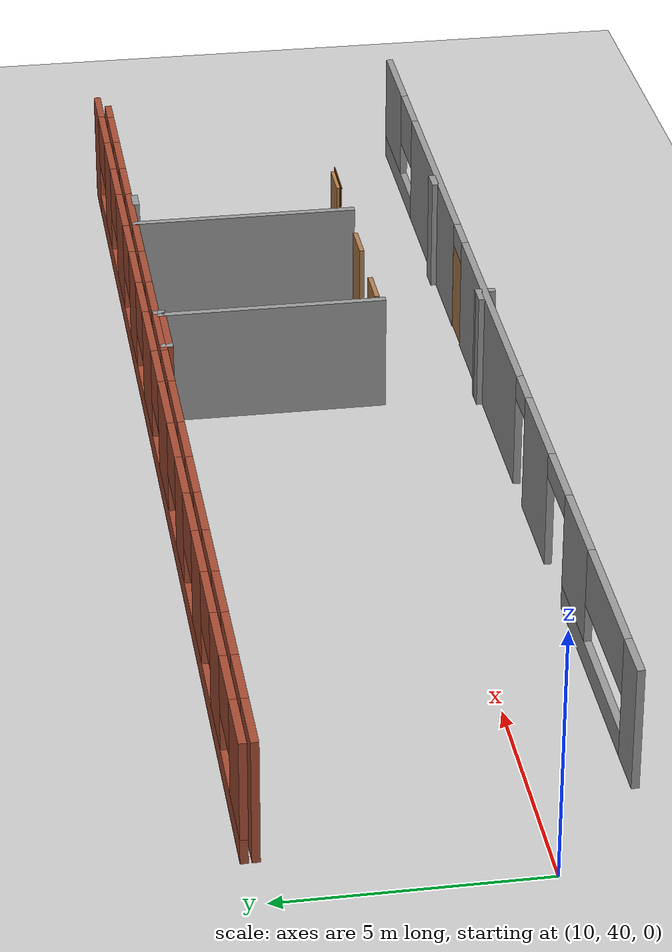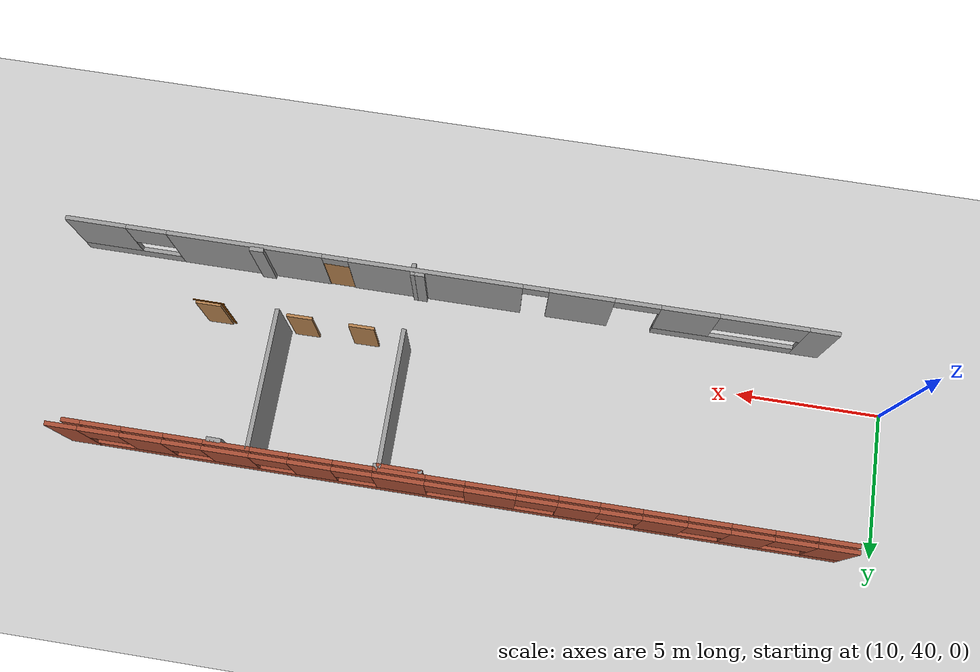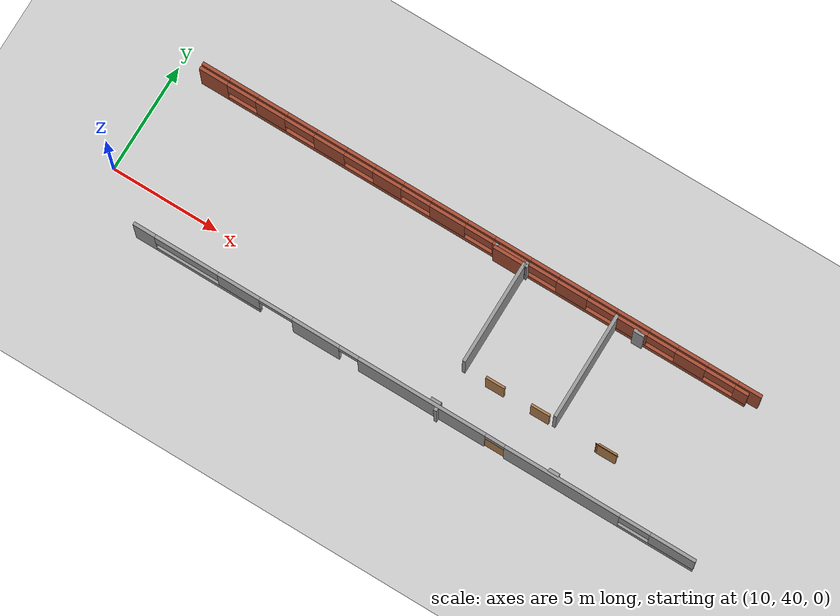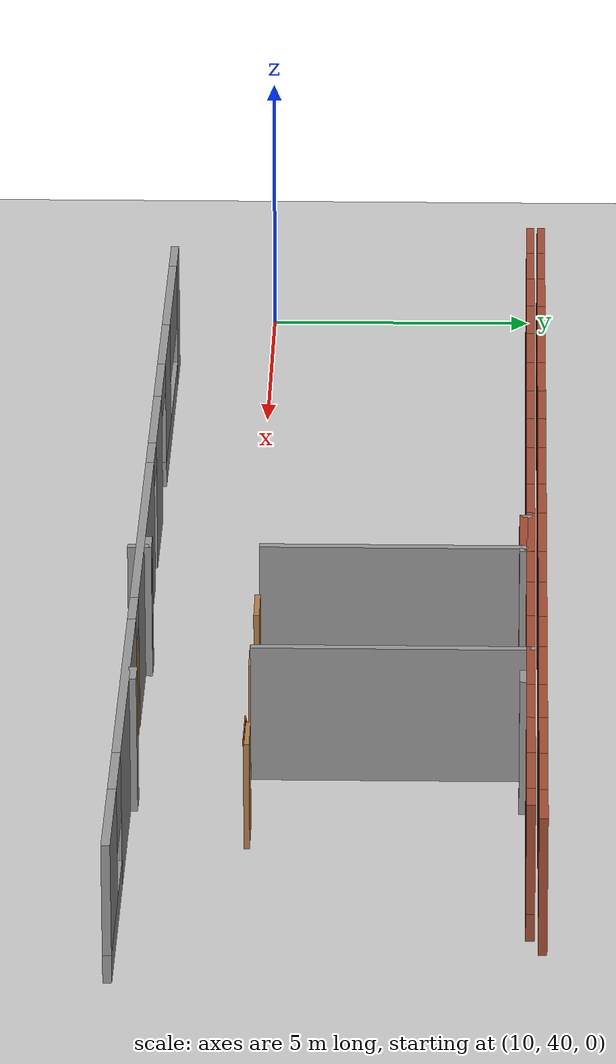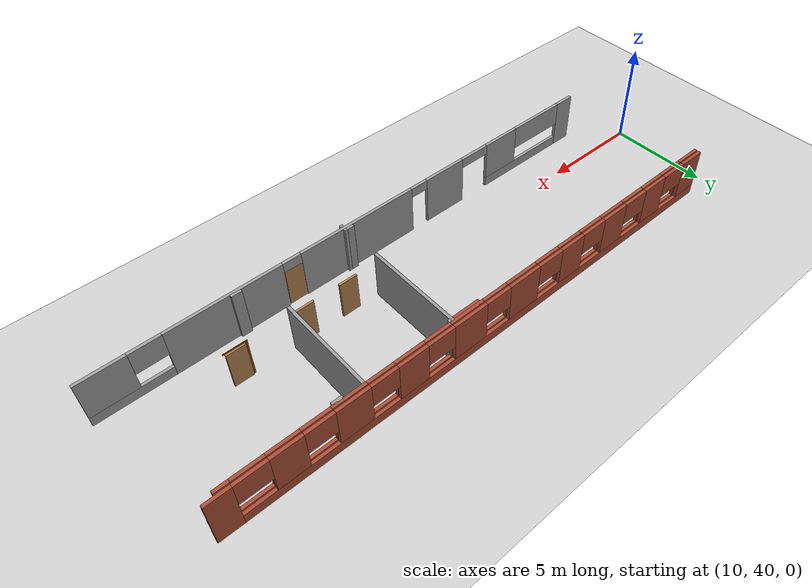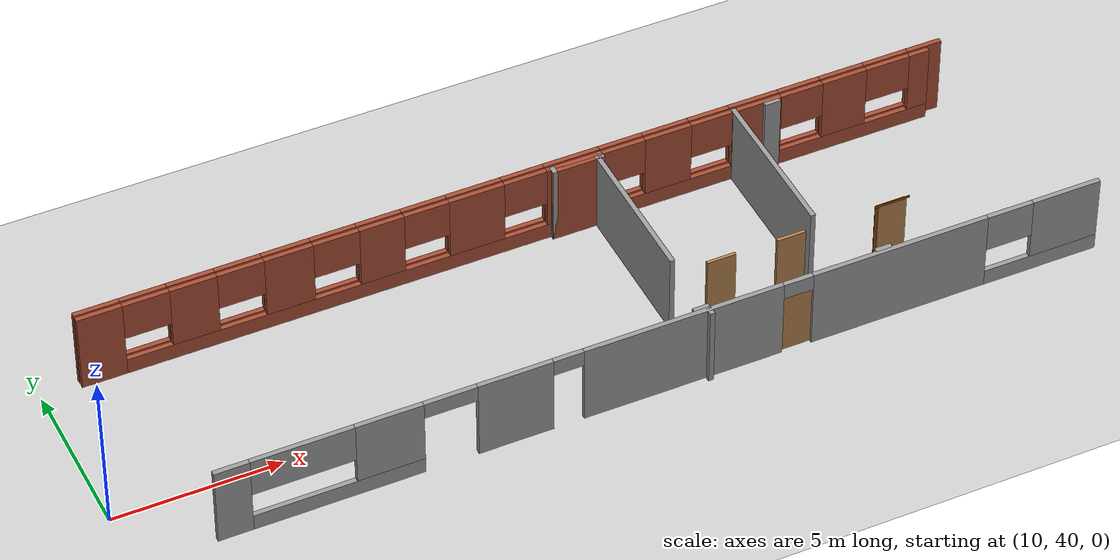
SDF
<sdf version="1.6">
 <world name="default">
  <model name="ground_plane">
   <static>1</static>
   <link name="link">
    <collision name="collision">
     <geometry><plane><normal>0 0 1</normal><size>100 100</size></plane></geometry>
     <surface><friction><ode><mu>100</mu><mu2>50</mu2></ode></friction></surface>
    </collision>
    <visual name="visual">
     <cast_shadows>0</cast_shadows>
     <geometry><plane><normal>0 0 1</normal><size>100 100</size></plane></geometry>
     <material>
      <script><uri>file://media/materials/scripts/gazebo.material</uri><name>Gazebo/Grey</name></script>
     </material>
    </visual>
   </link>
  </model>
  <model name="CVSSP">
   <pose>23.8714 24.094 0 0 -0 0</pose>
   <link name="Wall_0">
    <pose>1.68767 14.035 0 0 -0 0</pose>
    <visual name="Wall_0_Visual_0">
     <pose>-12.7386 0 1.25 0 -0 0</pose>
     <geometry><box><size>1.02282 0.15 2.5</size></box></geometry>
     <material>
      <script><uri>file://media/materials/scripts/gazebo.material</uri><name>Gazebo/Grey</name></script>
      <ambient>0.588235 0.588235 0.588235 1</ambient>
     </material>
    </visual>
    <collision name="Wall_0_Collision_0">
     <geometry><box><size>1.02282 0.15 2.5</size></box></geometry>
     <pose>-12.7386 0 1.25 0 -0 0</pose>
    </collision>
    <visual name="Wall_0_Visual_1">
     <pose>-4.58044 0 1.25 0 -0 0</pose>
     <geometry><box><size>2.22198 0.15 2.5</size></box></geometry>
     <material>
      <script><uri>file://media/materials/scripts/gazebo.material</uri><name>Gazebo/Grey</name></script>
      <ambient>0.588235 0.588235 0.588235 1</ambient>
     </material>
    </visual>
    <collision name="Wall_0_Collision_1">
     <geometry><box><size>2.22198 0.15 2.5</size></box></geometry>
     <pose>-4.58044 0 1.25 0 -0 0</pose>
    </collision>
    <visual name="Wall_0_Visual_2">
     <pose>0.426093 0 1.25 0 -0 0</pose>
     <geometry><box><size>5.99108 0.15 2.5</size></box></geometry>
     <material>
      <script><uri>file://media/materials/scripts/gazebo.material</uri><name>Gazebo/Grey</name></script>
      <ambient>0.588235 0.588235 0.588235 1</ambient>
     </material>
    </visual>
    <collision name="Wall_0_Collision_2">
     <geometry><box><size>5.99108 0.15 2.5</size></box></geometry>
     <pose>0.426093 0 1.25 0 -0 0</pose>
    </collision>
    <visual name="Wall_0_Visual_3">
     <pose>7.01875 0 1.25 0 -0 0</pose>
     <geometry><box><size>5.39422 0.15 2.5</size></box></geometry>
     <material>
      <script><uri>file://media/materials/scripts/gazebo.material</uri><name>Gazebo/Grey</name></script>
      <ambient>0.588235 0.588235 0.588235 1</ambient>
     </material>
    </visual>
    <collision name="Wall_0_Collision_3">
     <geometry><box><size>5.39422 0.15 2.5</size></box></geometry>
     <pose>7.01875 0 1.25 0 -0 0</pose>
    </collision>
    <visual name="Wall_0_Visual_4">
     <pose>-9.74161 0 0.25 0 -0 0</pose>
     <geometry><box><size>4.97113 0.15 0.5</size></box></geometry>
     <material>
      <script><uri>file://media/materials/scripts/gazebo.material</uri><name>Gazebo/Grey</name></script>
      <ambient>0.588235 0.588235 0.588235 1</ambient>
     </material>
    </visual>
    <collision name="Wall_0_Collision_4">
     <geometry><box><size>4.97113 0.15 0.5</size></box></geometry>
     <pose>-9.74161 0 0.25 0 -0 0</pose>
    </collision>
    <visual name="Wall_0_Visual_5">
     <pose>11.4829 0 0.25 0 -0 0</pose>
     <geometry><box><size>3.53415 0.15 0.5</size></box></geometry>
     <material>
      <script><uri>file://media/materials/scripts/gazebo.material</uri><name>Gazebo/Grey</name></script>
      <ambient>0.588235 0.588235 0.588235 1</ambient>
     </material>
    </visual>
    <collision name="Wall_0_Collision_5">
     <geometry><box><size>3.53415 0.15 0.5</size></box></geometry>
     <pose>11.4829 0 0.25 0 -0 0</pose>
    </collision>
    <visual name="Wall_0_Visual_6">
     <pose>-8.24385 0 1.5 0 -0 0</pose>
     <geometry><box><size>1.9756 0.15 2</size></box></geometry>
     <material>
      <script><uri>file://media/materials/scripts/gazebo.material</uri><name>Gazebo/Grey</name></script>
      <ambient>0.588235 0.588235 0.588235 1</ambient>
     </material>
    </visual>
    <collision name="Wall_0_Collision_6">
     <geometry><box><size>1.9756 0.15 2</size></box></geometry>
     <pose>-8.24385 0 1.5 0 -0 0</pose>
    </collision>
    <visual name="Wall_0_Visual_7">
     <pose>-8.24385 0 1.5 0 -0 0</pose>
     <geometry><box><size>1.9756 0.15 2</size></box></geometry>
     <material>
      <script><uri>file://media/materials/scripts/gazebo.material</uri><name>Gazebo/Grey</name></script>
      <ambient>0.588235 0.588235 0.588235 1</ambient>
     </material>
    </visual>
    <collision name="Wall_0_Collision_7">
     <geometry><box><size>1.9756 0.15 2</size></box></geometry>
     <pose>-8.24385 0 1.5 0 -0 0</pose>
    </collision>
    <visual name="Wall_0_Visual_8">
     <pose>12.1924 0 1.5 0 -0 0</pose>
     <geometry><box><size>2.11511 0.15 2</size></box></geometry>
     <material>
      <script><uri>file://media/materials/scripts/gazebo.material</uri><name>Gazebo/Grey</name></script>
      <ambient>0.588235 0.588235 0.588235 1</ambient>
     </material>
    </visual>
    <collision name="Wall_0_Collision_8">
     <geometry><box><size>2.11511 0.15 2</size></box></geometry>
     <pose>12.1924 0 1.5 0 -0 0</pose>
    </collision>
    <visual name="Wall_0_Visual_9">
     <pose>-10.7294 0 1.9 0 -0 0</pose>
     <geometry><box><size>2.99553 0.15 1.2</size></box></geometry>
     <material>
      <script><uri>file://media/materials/scripts/gazebo.material</uri><name>Gazebo/Grey</name></script>
      <ambient>0.588235 0.588235 0.588235 1</ambient>
     </material>
    </visual>
    <collision name="Wall_0_Collision_9">
     <geometry><box><size>2.99553 0.15 1.2</size></box></geometry>
     <pose>-10.7294 0 1.9 0 -0 0</pose>
    </collision>
    <visual name="Wall_0_Visual_10">
     <pose>10.4254 0 1.9 0 -0 0</pose>
     <geometry><box><size>1.41904 0.15 1.2</size></box></geometry>
     <material>
      <script><uri>file://media/materials/scripts/gazebo.material</uri><name>Gazebo/Grey</name></script>
      <ambient>0.588235 0.588235 0.588235 1</ambient>
     </material>
    </visual>
    <collision name="Wall_0_Collision_10">
     <geometry><box><size>1.41904 0.15 1.2</size></box></geometry>
     <pose>10.4254 0 1.9 0 -0 0</pose>
    </collision>
    <visual name="Wall_0_Visual_11">
     <pose>-3.01945 0 2.25 0 -0 0</pose>
     <geometry><box><size>0.9 0.15 0.5</size></box></geometry>
     <material>
      <script><uri>file://media/materials/scripts/gazebo.material</uri><name>Gazebo/Grey</name></script>
      <ambient>0.588235 0.588235 0.588235 1</ambient>
     </material>
    </visual>
    <collision name="Wall_0_Collision_11">
     <geometry><box><size>0.9 0.15 0.5</size></box></geometry>
     <pose>-3.01945 0 2.25 0 -0 0</pose>
    </collision>
    <visual name="Wall_0_Visual_12">
     <pose>3.87163 0 2.25 0 -0 0</pose>
     <geometry><box><size>0.9 0.15 0.5</size></box></geometry>
     <material>
      <script><uri>file://media/materials/scripts/gazebo.material</uri><name>Gazebo/Grey</name></script>
      <ambient>0.588235 0.588235 0.588235 1</ambient>
     </material>
    </visual>
    <collision name="Wall_0_Collision_12">
     <geometry><box><size>0.9 0.15 0.5</size></box></geometry>
     <pose>3.87163 0 2.25 0 -0 0</pose>
    </collision>
    <visual name="Wall_0_Visual_13">
     <pose>-6.47374 0 2.25 0 -0 0</pose>
     <geometry><box><size>1.56462 0.15 0.5</size></box></geometry>
     <material>
      <script><uri>file://media/materials/scripts/gazebo.material</uri><name>Gazebo/Grey</name></script>
      <ambient>0.588235 0.588235 0.588235 1</ambient>
     </material>
    </visual>
    <collision name="Wall_0_Collision_13">
     <geometry><box><size>1.56462 0.15 0.5</size></box></geometry>
     <pose>-6.47374 0 2.25 0 -0 0</pose>
    </collision>
    <visual name="Wall_0_Visual_14">
     <pose>-6.47374 0 2.25 0 -0 0</pose>
     <geometry><box><size>1.56462 0.15 0.5</size></box></geometry>
     <material>
      <script><uri>file://media/materials/scripts/gazebo.material</uri><name>Gazebo/Grey</name></script>
      <ambient>0.588235 0.588235 0.588235 1</ambient>
     </material>
    </visual>
    <collision name="Wall_0_Collision_14">
     <geometry><box><size>1.56462 0.15 0.5</size></box></geometry>
     <pose>-6.47374 0 2.25 0 -0 0</pose>
    </collision>
   </link>
   <link name="Wall_301">
    <pose>0.541411 21.1476 0 0 -0 3.14159</pose>
    <visual name="Wall_301_Visual_0">
     <pose>-12.7063 0 1.25 0 -0 0</pose>
     <geometry><box><size>1.08735 0.15 2.5</size></box></geometry>
     <material>
      <script><uri>file://media/materials/scripts/gazebo.material</uri><name>Gazebo/Bricks</name></script>
      <ambient>1 1 1 1</ambient>
     </material>
    </visual>
    <collision name="Wall_301_Collision_0">
     <geometry><box><size>1.08735 0.15 2.5</size></box></geometry>
     <pose>-12.7063 0 1.25 0 -0 0</pose>
    </collision>
    <visual name="Wall_301_Visual_1">
     <pose>0.543674 0 0.25 0 -0 0</pose>
     <geometry><box><size>25.4127 0.15 0.5</size></box></geometry>
     <material>
      <script><uri>file://media/materials/scripts/gazebo.material</uri><name>Gazebo/Bricks</name></script>
      <ambient>1 1 1 1</ambient>
     </material>
    </visual>
    <collision name="Wall_301_Collision_1">
     <geometry><box><size>25.4127 0.15 0.5</size></box></geometry>
     <pose>0.543674 0 0.25 0 -0 0</pose>
    </collision>
    <visual name="Wall_301_Visual_2">
     <pose>-10.054 0 1.5 0 -0 0</pose>
     <geometry><box><size>1.40457 0.15 2</size></box></geometry>
     <material>
      <script><uri>file://media/materials/scripts/gazebo.material</uri><name>Gazebo/Bricks</name></script>
      <ambient>1 1 1 1</ambient>
     </material>
    </visual>
    <collision name="Wall_301_Collision_2">
     <geometry><box><size>1.40457 0.15 2</size></box></geometry>
     <pose>-10.054 0 1.5 0 -0 0</pose>
    </collision>
    <visual name="Wall_301_Visual_3">
     <pose>-7.26 0 1.5 0 -0 0</pose>
     <geometry><box><size>1.56325 0.15 2</size></box></geometry>
     <material>
      <script><uri>file://media/materials/scripts/gazebo.material</uri><name>Gazebo/Bricks</name></script>
      <ambient>1 1 1 1</ambient>
     </material>
    </visual>
    <collision name="Wall_301_Collision_3">
     <geometry><box><size>1.56325 0.15 2</size></box></geometry>
     <pose>-7.26 0 1.5 0 -0 0</pose>
    </collision>
    <visual name="Wall_301_Visual_4">
     <pose>-4.48871 0 1.5 0 -0 0</pose>
     <geometry><box><size>1.43857 0.15 2</size></box></geometry>
     <material>
      <script><uri>file://media/materials/scripts/gazebo.material</uri><name>Gazebo/Bricks</name></script>
      <ambient>1 1 1 1</ambient>
     </material>
    </visual>
    <collision name="Wall_301_Collision_4">
     <geometry><box><size>1.43857 0.15 2</size></box></geometry>
     <pose>-4.48871 0 1.5 0 -0 0</pose>
    </collision>
    <visual name="Wall_301_Visual_5">
     <pose>-1.57856 0 1.5 0 -0 0</pose>
     <geometry><box><size>1.70493 0.15 2</size></box></geometry>
     <material>
      <script><uri>file://media/materials/scripts/gazebo.material</uri><name>Gazebo/Bricks</name></script>
      <ambient>1 1 1 1</ambient>
     </material>
    </visual>
    <collision name="Wall_301_Collision_5">
     <geometry><box><size>1.70493 0.15 2</size></box></geometry>
     <pose>-1.57856 0 1.5 0 -0 0</pose>
    </collision>
    <visual name="Wall_301_Visual_6">
     <pose>1.41376 0 1.5 0 -0 0</pose>
     <geometry><box><size>1.68226 0.15 2</size></box></geometry>
     <material>
      <script><uri>file://media/materials/scripts/gazebo.material</uri><name>Gazebo/Bricks</name></script>
      <ambient>1 1 1 1</ambient>
     </material>
    </visual>
    <collision name="Wall_301_Collision_6">
     <geometry><box><size>1.68226 0.15 2</size></box></geometry>
     <pose>1.41376 0 1.5 0 -0 0</pose>
    </collision>
    <visual name="Wall_301_Visual_7">
     <pose>4.28139 0 1.5 0 -0 0</pose>
     <geometry><box><size>1.35356 0.15 2</size></box></geometry>
     <material>
      <script><uri>file://media/materials/scripts/gazebo.material</uri><name>Gazebo/Bricks</name></script>
      <ambient>1 1 1 1</ambient>
     </material>
    </visual>
    <collision name="Wall_301_Collision_7">
     <geometry><box><size>1.35356 0.15 2</size></box></geometry>
     <pose>4.28139 0 1.5 0 -0 0</pose>
    </collision>
    <visual name="Wall_301_Visual_8">
     <pose>7.04557 0 1.5 0 -0 0</pose>
     <geometry><box><size>1.44133 0.15 2</size></box></geometry>
     <material>
      <script><uri>file://media/materials/scripts/gazebo.material</uri><name>Gazebo/Bricks</name></script>
      <ambient>1 1 1 1</ambient>
     </material>
    </visual>
    <collision name="Wall_301_Collision_8">
     <geometry><box><size>1.44133 0.15 2</size></box></geometry>
     <pose>7.04557 0 1.5 0 -0 0</pose>
    </collision>
    <visual name="Wall_301_Visual_9">
     <pose>9.84934 0 1.5 0 -0 0</pose>
     <geometry><box><size>1.39875 0.15 2</size></box></geometry>
     <material>
      <script><uri>file://media/materials/scripts/gazebo.material</uri><name>Gazebo/Bricks</name></script>
      <ambient>1 1 1 1</ambient>
     </material>
    </visual>
    <collision name="Wall_301_Collision_9">
     <geometry><box><size>1.39875 0.15 2</size></box></geometry>
     <pose>9.84934 0 1.5 0 -0 0</pose>
    </collision>
    <visual name="Wall_301_Visual_10">
     <pose>12.5827 0 1.5 0 -0 0</pose>
     <geometry><box><size>1.33456 0.15 2</size></box></geometry>
     <material>
      <script><uri>file://media/materials/scripts/gazebo.material</uri><name>Gazebo/Bricks</name></script>
      <ambient>1 1 1 1</ambient>
     </material>
    </visual>
    <collision name="Wall_301_Collision_10">
     <geometry><box><size>1.33456 0.15 2</size></box></geometry>
     <pose>12.5827 0 1.5 0 -0 0</pose>
    </collision>
    <visual name="Wall_301_Visual_11">
     <pose>-11.4595 0 1.9 0 -0 0</pose>
     <geometry><box><size>1.4064 0.15 1.2</size></box></geometry>
     <material>
      <script><uri>file://media/materials/scripts/gazebo.material</uri><name>Gazebo/Bricks</name></script>
      <ambient>1 1 1 1</ambient>
     </material>
    </visual>
    <collision name="Wall_301_Collision_11">
     <geometry><box><size>1.4064 0.15 1.2</size></box></geometry>
     <pose>-11.4595 0 1.9 0 -0 0</pose>
    </collision>
    <visual name="Wall_301_Visual_12">
     <pose>-8.69666 0 1.9 0 -0 0</pose>
     <geometry><box><size>1.31005 0.15 1.2</size></box></geometry>
     <material>
      <script><uri>file://media/materials/scripts/gazebo.material</uri><name>Gazebo/Bricks</name></script>
      <ambient>1 1 1 1</ambient>
     </material>
    </visual>
    <collision name="Wall_301_Collision_12">
     <geometry><box><size>1.31005 0.15 1.2</size></box></geometry>
     <pose>-8.69666 0 1.9 0 -0 0</pose>
    </collision>
    <visual name="Wall_301_Visual_13">
     <pose>-5.84319 0 1.9 0 -0 0</pose>
     <geometry><box><size>1.27038 0.15 1.2</size></box></geometry>
     <material>
      <script><uri>file://media/materials/scripts/gazebo.material</uri><name>Gazebo/Bricks</name></script>
      <ambient>1 1 1 1</ambient>
     </material>
    </visual>
    <collision name="Wall_301_Collision_13">
     <geometry><box><size>1.27038 0.15 1.2</size></box></geometry>
     <pose>-5.84319 0 1.9 0 -0 0</pose>
    </collision>
    <visual name="Wall_301_Visual_14">
     <pose>-3.10023 0 1.9 0 -0 0</pose>
     <geometry><box><size>1.33839 0.15 1.2</size></box></geometry>
     <material>
      <script><uri>file://media/materials/scripts/gazebo.material</uri><name>Gazebo/Bricks</name></script>
      <ambient>1 1 1 1</ambient>
     </material>
    </visual>
    <collision name="Wall_301_Collision_14">
     <geometry><box><size>1.33839 0.15 1.2</size></box></geometry>
     <pose>-3.10023 0 1.9 0 -0 0</pose>
    </collision>
    <visual name="Wall_301_Visual_15">
     <pose>-0.076737 0 1.9 0 -0 0</pose>
     <geometry><box><size>1.29872 0.15 1.2</size></box></geometry>
     <material>
      <script><uri>file://media/materials/scripts/gazebo.material</uri><name>Gazebo/Bricks</name></script>
      <ambient>1 1 1 1</ambient>
     </material>
    </visual>
    <collision name="Wall_301_Collision_15">
     <geometry><box><size>1.29872 0.15 1.2</size></box></geometry>
     <pose>-0.076737 0 1.9 0 -0 0</pose>
    </collision>
    <visual name="Wall_301_Visual_16">
     <pose>2.92975 0 1.9 0 -0 0</pose>
     <geometry><box><size>1.34973 0.15 1.2</size></box></geometry>
     <material>
      <script><uri>file://media/materials/scripts/gazebo.material</uri><name>Gazebo/Bricks</name></script>
      <ambient>1 1 1 1</ambient>
     </material>
    </visual>
    <collision name="Wall_301_Collision_16">
     <geometry><box><size>1.34973 0.15 1.2</size></box></geometry>
     <pose>2.92975 0 1.9 0 -0 0</pose>
    </collision>
    <visual name="Wall_301_Visual_17">
     <pose>5.64154 0 1.9 0 -0 0</pose>
     <geometry><box><size>1.36673 0.15 1.2</size></box></geometry>
     <material>
      <script><uri>file://media/materials/scripts/gazebo.material</uri><name>Gazebo/Bricks</name></script>
      <ambient>1 1 1 1</ambient>
     </material>
    </visual>
    <collision name="Wall_301_Collision_17">
     <geometry><box><size>1.36673 0.15 1.2</size></box></geometry>
     <pose>5.64154 0 1.9 0 -0 0</pose>
    </collision>
    <visual name="Wall_301_Visual_18">
     <pose>8.4581 0 1.9 0 -0 0</pose>
     <geometry><box><size>1.38373 0.15 1.2</size></box></geometry>
     <material>
      <script><uri>file://media/materials/scripts/gazebo.material</uri><name>Gazebo/Bricks</name></script>
      <ambient>1 1 1 1</ambient>
     </material>
    </visual>
    <collision name="Wall_301_Collision_18">
     <geometry><box><size>1.38373 0.15 1.2</size></box></geometry>
     <pose>8.4581 0 1.9 0 -0 0</pose>
    </collision>
    <visual name="Wall_301_Visual_19">
     <pose>11.2321 0 1.9 0 -0 0</pose>
     <geometry><box><size>1.36673 0.15 1.2</size></box></geometry>
     <material>
      <script><uri>file://media/materials/scripts/gazebo.material</uri><name>Gazebo/Bricks</name></script>
      <ambient>1 1 1 1</ambient>
     </material>
    </visual>
    <collision name="Wall_301_Collision_19">
     <geometry><box><size>1.36673 0.15 1.2</size></box></geometry>
     <pose>11.2321 0 1.9 0 -0 0</pose>
    </collision>
   </link>
   <link name="Wall_303">
    <pose>0.29478 20.9408 0 0 -0 0</pose>
    <visual name="Wall_303_Visual_0">
     <pose>-12.3344 0 1.25 0 -0 0</pose>
     <geometry><box><size>1.33119 0.15 2.5</size></box></geometry>
     <material>
      <script><uri>file://media/materials/scripts/gazebo.material</uri><name>Gazebo/Bricks</name></script>
      <ambient>1 1 1 1</ambient>
     </material>
    </visual>
    <collision name="Wall_303_Collision_0">
     <geometry><box><size>1.33119 0.15 2.5</size></box></geometry>
     <pose>-12.3344 0 1.25 0 -0 0</pose>
    </collision>
    <visual name="Wall_303_Visual_1">
     <pose>0.665598 0 0.25 0 -0 0</pose>
     <geometry><box><size>24.6688 0.15 0.5</size></box></geometry>
     <material>
      <script><uri>file://media/materials/scripts/gazebo.material</uri><name>Gazebo/Bricks</name></script>
      <ambient>1 1 1 1</ambient>
     </material>
    </visual>
    <collision name="Wall_303_Collision_1">
     <geometry><box><size>24.6688 0.15 0.5</size></box></geometry>
     <pose>0.665598 0 0.25 0 -0 0</pose>
    </collision>
    <visual name="Wall_303_Visual_2">
     <pose>-9.60766 0 1.5 0 -0 0</pose>
     <geometry><box><size>1.38884 0.15 2</size></box></geometry>
     <material>
      <script><uri>file://media/materials/scripts/gazebo.material</uri><name>Gazebo/Bricks</name></script>
      <ambient>1 1 1 1</ambient>
     </material>
    </visual>
    <collision name="Wall_303_Collision_2">
     <geometry><box><size>1.38884 0.15 2</size></box></geometry>
     <pose>-9.60766 0 1.5 0 -0 0</pose>
    </collision>
    <visual name="Wall_303_Visual_3">
     <pose>-6.80389 0 1.5 0 -0 0</pose>
     <geometry><box><size>1.45124 0.15 2</size></box></geometry>
     <material>
      <script><uri>file://media/materials/scripts/gazebo.material</uri><name>Gazebo/Bricks</name></script>
      <ambient>1 1 1 1</ambient>
     </material>
    </visual>
    <collision name="Wall_303_Collision_3">
     <geometry><box><size>1.45124 0.15 2</size></box></geometry>
     <pose>-6.80389 0 1.5 0 -0 0</pose>
    </collision>
    <visual name="Wall_303_Visual_4">
     <pose>-4.03476 0 1.5 0 -0 0</pose>
     <geometry><box><size>1.34223 0.15 2</size></box></geometry>
     <material>
      <script><uri>file://media/materials/scripts/gazebo.material</uri><name>Gazebo/Bricks</name></script>
      <ambient>1 1 1 1</ambient>
     </material>
    </visual>
    <collision name="Wall_303_Collision_4">
     <geometry><box><size>1.34223 0.15 2</size></box></geometry>
     <pose>-4.03476 0 1.5 0 -0 0</pose>
    </collision>
    <visual name="Wall_303_Visual_5">
     <pose>-1.16996 0 1.5 0 -0 0</pose>
     <geometry><box><size>1.6766 0.15 2</size></box></geometry>
     <material>
      <script><uri>file://media/materials/scripts/gazebo.material</uri><name>Gazebo/Bricks</name></script>
      <ambient>1 1 1 1</ambient>
     </material>
    </visual>
    <collision name="Wall_303_Collision_5">
     <geometry><box><size>1.6766 0.15 2</size></box></geometry>
     <pose>-1.16996 0 1.5 0 -0 0</pose>
    </collision>
    <visual name="Wall_303_Visual_6">
     <pose>1.82803 0 1.5 0 -0 0</pose>
     <geometry><box><size>1.7106 0.15 2</size></box></geometry>
     <material>
      <script><uri>file://media/materials/scripts/gazebo.material</uri><name>Gazebo/Bricks</name></script>
      <ambient>1 1 1 1</ambient>
     </material>
    </visual>
    <collision name="Wall_303_Collision_6">
     <geometry><box><size>1.7106 0.15 2</size></box></geometry>
     <pose>1.82803 0 1.5 0 -0 0</pose>
    </collision>
    <visual name="Wall_303_Visual_7">
     <pose>4.72401 0 1.5 0 -0 0</pose>
     <geometry><box><size>1.43857 0.15 2</size></box></geometry>
     <material>
      <script><uri>file://media/materials/scripts/gazebo.material</uri><name>Gazebo/Bricks</name></script>
      <ambient>1 1 1 1</ambient>
     </material>
    </visual>
    <collision name="Wall_303_Collision_7">
     <geometry><box><size>1.43857 0.15 2</size></box></geometry>
     <pose>4.72401 0 1.5 0 -0 0</pose>
    </collision>
    <visual name="Wall_303_Visual_8">
     <pose>7.50097 0 1.5 0 -0 0</pose>
     <geometry><box><size>1.55192 0.15 2</size></box></geometry>
     <material>
      <script><uri>file://media/materials/scripts/gazebo.material</uri><name>Gazebo/Bricks</name></script>
      <ambient>1 1 1 1</ambient>
     </material>
    </visual>
    <collision name="Wall_303_Collision_8">
     <geometry><box><size>1.55192 0.15 2</size></box></geometry>
     <pose>7.50097 0 1.5 0 -0 0</pose>
    </collision>
    <visual name="Wall_303_Visual_9">
     <pose>10.2921 0 1.5 0 -0 0</pose>
     <geometry><box><size>1.3989 0.15 2</size></box></geometry>
     <material>
      <script><uri>file://media/materials/scripts/gazebo.material</uri><name>Gazebo/Bricks</name></script>
      <ambient>1 1 1 1</ambient>
     </material>
    </visual>
    <collision name="Wall_303_Collision_9">
     <geometry><box><size>1.3989 0.15 2</size></box></geometry>
     <pose>10.2921 0 1.5 0 -0 0</pose>
    </collision>
    <visual name="Wall_303_Visual_10">
     <pose>12.682 0 1.5 0 -0 0</pose>
     <geometry><box><size>0.636054 0.15 2</size></box></geometry>
     <material>
      <script><uri>file://media/materials/scripts/gazebo.material</uri><name>Gazebo/Bricks</name></script>
      <ambient>1 1 1 1</ambient>
     </material>
    </visual>
    <collision name="Wall_303_Collision_10">
     <geometry><box><size>0.636054 0.15 2</size></box></geometry>
     <pose>12.682 0 1.5 0 -0 0</pose>
    </collision>
    <visual name="Wall_303_Visual_11">
     <pose>-10.9854 0 1.9 0 -0 0</pose>
     <geometry><box><size>1.36673 0.15 1.2</size></box></geometry>
     <material>
      <script><uri>file://media/materials/scripts/gazebo.material</uri><name>Gazebo/Bricks</name></script>
      <ambient>1 1 1 1</ambient>
     </material>
    </visual>
    <collision name="Wall_303_Collision_11">
     <geometry><box><size>1.36673 0.15 1.2</size></box></geometry>
     <pose>-10.9854 0 1.9 0 -0 0</pose>
    </collision>
    <visual name="Wall_303_Visual_12">
     <pose>-8.22138 0 1.9 0 -0 0</pose>
     <geometry><box><size>1.38373 0.15 1.2</size></box></geometry>
     <material>
      <script><uri>file://media/materials/scripts/gazebo.material</uri><name>Gazebo/Bricks</name></script>
      <ambient>1 1 1 1</ambient>
     </material>
    </visual>
    <collision name="Wall_303_Collision_12">
     <geometry><box><size>1.38373 0.15 1.2</size></box></geometry>
     <pose>-8.22138 0 1.9 0 -0 0</pose>
    </collision>
    <visual name="Wall_303_Visual_13">
     <pose>-5.39208 0 1.9 0 -0 0</pose>
     <geometry><box><size>1.37239 0.15 1.2</size></box></geometry>
     <material>
      <script><uri>file://media/materials/scripts/gazebo.material</uri><name>Gazebo/Bricks</name></script>
      <ambient>1 1 1 1</ambient>
     </material>
    </visual>
    <collision name="Wall_303_Collision_13">
     <geometry><box><size>1.37239 0.15 1.2</size></box></geometry>
     <pose>-5.39208 0 1.9 0 -0 0</pose>
    </collision>
    <visual name="Wall_303_Visual_14">
     <pose>-2.68595 0 1.9 0 -0 0</pose>
     <geometry><box><size>1.35539 0.15 1.2</size></box></geometry>
     <material>
      <script><uri>file://media/materials/scripts/gazebo.material</uri><name>Gazebo/Bricks</name></script>
      <ambient>1 1 1 1</ambient>
     </material>
    </visual>
    <collision name="Wall_303_Collision_14">
     <geometry><box><size>1.35539 0.15 1.2</size></box></geometry>
     <pose>-2.68595 0 1.9 0 -0 0</pose>
    </collision>
    <visual name="Wall_303_Visual_15">
     <pose>0.320535 0 1.9 0 -0 0</pose>
     <geometry><box><size>1.30439 0.15 1.2</size></box></geometry>
     <material>
      <script><uri>file://media/materials/scripts/gazebo.material</uri><name>Gazebo/Bricks</name></script>
      <ambient>1 1 1 1</ambient>
     </material>
    </visual>
    <collision name="Wall_303_Collision_15">
     <geometry><box><size>1.30439 0.15 1.2</size></box></geometry>
     <pose>0.320535 0 1.9 0 -0 0</pose>
    </collision>
    <visual name="Wall_303_Visual_16">
     <pose>3.34402 0 1.9 0 -0 0</pose>
     <geometry><box><size>1.32139 0.15 1.2</size></box></geometry>
     <material>
      <script><uri>file://media/materials/scripts/gazebo.material</uri><name>Gazebo/Bricks</name></script>
      <ambient>1 1 1 1</ambient>
     </material>
    </visual>
    <collision name="Wall_303_Collision_16">
     <geometry><box><size>1.32139 0.15 1.2</size></box></geometry>
     <pose>3.34402 0 1.9 0 -0 0</pose>
    </collision>
    <visual name="Wall_303_Visual_17">
     <pose>6.08415 0 1.9 0 -0 0</pose>
     <geometry><box><size>1.28172 0.15 1.2</size></box></geometry>
     <material>
      <script><uri>file://media/materials/scripts/gazebo.material</uri><name>Gazebo/Bricks</name></script>
      <ambient>1 1 1 1</ambient>
     </material>
    </visual>
    <collision name="Wall_303_Collision_17">
     <geometry><box><size>1.28172 0.15 1.2</size></box></geometry>
     <pose>6.08415 0 1.9 0 -0 0</pose>
    </collision>
    <visual name="Wall_303_Visual_18">
     <pose>8.93479 0 1.9 0 -0 0</pose>
     <geometry><box><size>1.31572 0.15 1.2</size></box></geometry>
     <material>
      <script><uri>file://media/materials/scripts/gazebo.material</uri><name>Gazebo/Bricks</name></script>
      <ambient>1 1 1 1</ambient>
     </material>
    </visual>
    <collision name="Wall_303_Collision_18">
     <geometry><box><size>1.31572 0.15 1.2</size></box></geometry>
     <pose>8.93479 0 1.9 0 -0 0</pose>
    </collision>
    <visual name="Wall_303_Visual_19">
     <pose>11.6777 0 1.9 0 -0 0</pose>
     <geometry><box><size>1.37239 0.15 1.2</size></box></geometry>
     <material>
      <script><uri>file://media/materials/scripts/gazebo.material</uri><name>Gazebo/Bricks</name></script>
      <ambient>1 1 1 1</ambient>
     </material>
    </visual>
    <collision name="Wall_303_Collision_19">
     <geometry><box><size>1.37239 0.15 1.2</size></box></geometry>
     <pose>11.6777 0 1.9 0 -0 0</pose>
    </collision>
   </link>
   <link name="Wall_322">
    <collision name="Wall_322_Collision">
     <geometry><box><size>4.75 0.15 2.5</size></box></geometry>
     <pose>0 0 1.25 0 -0 0</pose>
    </collision>
    <visual name="Wall_322_Visual">
     <pose>0 0 1.25 0 -0 0</pose>
     <geometry><box><size>4.75 0.15 2.5</size></box></geometry>
     <material>
      <script><uri>file://media/materials/scripts/gazebo.material</uri><name>Gazebo/Grey</name></script>
      <ambient>0.588235 0.588235 0.588235 1</ambient>
     </material>
    </visual>
    <pose>2.8067 18.5154 0 0 -0 1.5708</pose>
   </link>
   <link name="Wall_323">
    <collision name="Wall_323_Collision">
     <geometry><box><size>1.5 0.15 2.5</size></box></geometry>
     <pose>0 0 1.25 0 -0 0</pose>
    </collision>
    <visual name="Wall_323_Visual">
     <pose>0 0 1.25 0 -0 0</pose>
     <geometry><box><size>1.5 0.15 2.5</size></box></geometry>
     <material>
      <script><uri>file://media/materials/scripts/gazebo.material</uri><name>Gazebo/Bricks</name></script>
      <ambient>1 1 1 1</ambient>
     </material>
    </visual>
    <pose>2.1317 20.8154 0 0 -0 3.14159</pose>
   </link>
   <link name="Wall_324">
    <collision name="Wall_324_Collision">
     <geometry><box><size>0.25 0.15 2.5</size></box></geometry>
     <pose>0 0 1.25 0 -0 0</pose>
    </collision>
    <visual name="Wall_324_Visual">
     <pose>0 0 1.25 0 -0 0</pose>
     <geometry><box><size>0.25 0.15 2.5</size></box></geometry>
     <material>
      <script><uri>file://media/materials/scripts/gazebo.material</uri><name>Gazebo/Grey</name></script>
      <ambient>1 1 1 1</ambient>
     </material>
    </visual>
    <pose>1.4567 20.8654 0 0 -0 1.5708</pose>
   </link>
   <link name="Wall_332">
    <collision name="Wall_332_Collision">
     <geometry><box><size>0.280384 0.15 2.5</size></box></geometry>
     <pose>0 0 1.25 0 -0 0</pose>
    </collision>
    <visual name="Wall_332_Visual">
     <pose>0 0 1.25 0 -0 0</pose>
     <geometry><box><size>0.280384 0.15 2.5</size></box></geometry>
     <material>
      <script><uri>file://media/materials/scripts/gazebo.material</uri><name>Gazebo/Grey</name></script>
      <ambient>1 1 1 1</ambient>
     </material>
    </visual>
    <pose>2.8517 20.8304 0 0 0 -0.076772</pose>
   </link>
   <link name="Wall_333">
    <collision name="Wall_333_Collision">
     <geometry><box><size>0.25 0.15 2.5</size></box></geometry>
     <pose>0 0 1.25 0 -0 0</pose>
    </collision>
    <visual name="Wall_333_Visual">
     <pose>0 0 1.25 0 -0 0</pose>
     <geometry><box><size>0.25 0.15 2.5</size></box></geometry>
     <material>
      <script><uri>file://media/materials/scripts/gazebo.material</uri><name>Gazebo/Grey</name></script>
      <ambient>1 1 1 1</ambient>
     </material>
    </visual>
    <pose>2.9067 20.8754 0 0 -0 1.5708</pose>
   </link>
   <link name="Wall_335">
    <collision name="Wall_335_Collision">
     <geometry><box><size>4.88455 0.15 2.5</size></box></geometry>
     <pose>0 0 1.25 0 -0 0</pose>
    </collision>
    <visual name="Wall_335_Visual">
     <pose>0 0 1.25 0 -0 0</pose>
     <geometry><box><size>4.88455 0.15 2.5</size></box></geometry>
     <material>
      <script><uri>file://media/materials/scripts/gazebo.material</uri><name>Gazebo/Grey</name></script>
      <ambient>0.588235 0.588235 0.588235 1</ambient>
     </material>
    </visual>
    <pose>7.10695 18.568 0 0 -0 1.5708</pose>
   </link>
   <link name="Wall_607">
    <collision name="Wall_607_Collision">
     <geometry><box><size>0.487238 0.15 2.5</size></box></geometry>
     <pose>0 0 1.25 0 -0 0</pose>
    </collision>
    <visual name="Wall_607_Visual">
     <pose>0 0 1.25 0 -0 0</pose>
     <geometry><box><size>0.487238 0.15 2.5</size></box></geometry>
     <material>
      <script><uri>file://media/materials/scripts/gazebo.material</uri><name>Gazebo/Grey</name></script>
      <ambient>1 1 1 1</ambient>
     </material>
    </visual>
    <pose>8.24171 14.1532 0 0 -0 0</pose>
   </link>
   <link name="Wall_613">
    <collision name="Wall_613_Collision">
     <geometry><box><size>0.485444 0.15 2.5</size></box></geometry>
     <pose>0 0 1.25 0 -0 0</pose>
    </collision>
    <visual name="Wall_613_Visual">
     <pose>0 0 1.25 0 -0 0</pose>
     <geometry><box><size>0.485444 0.15 2.5</size></box></geometry>
     <material>
      <script><uri>file://media/materials/scripts/gazebo.material</uri><name>Gazebo/Grey</name></script>
      <ambient>1 1 1 1</ambient>
     </material>
    </visual>
    <pose>2.69957 14.1578 0 0 -0 0</pose>
   </link>
   <link name="Wall_614">
    <collision name="Wall_614_Collision">
     <geometry><box><size>0.422338 0.15 2.5</size></box></geometry>
     <pose>0 0 1.25 0 -0 0</pose>
    </collision>
    <visual name="Wall_614_Visual">
     <pose>0 0 1.25 0 -0 0</pose>
     <geometry><box><size>0.422338 0.15 2.5</size></box></geometry>
     <material>
      <script><uri>file://media/materials/scripts/gazebo.material</uri><name>Gazebo/Grey</name></script>
      <ambient>1 1 1 1</ambient>
     </material>
    </visual>
    <pose>2.86727 14.0219 0 0 0 -1.5708</pose>
   </link>
   <link name="Wall_671">
    <collision name="Wall_671_Collision">
     <geometry><box><size>0.491931 0.15 2.5</size></box></geometry>
     <pose>0 0 1.25 0 -0 0</pose>
    </collision>
    <visual name="Wall_671_Visual">
     <pose>0 0 1.25 0 -0 0</pose>
     <geometry><box><size>0.491931 0.15 2.5</size></box></geometry>
     <material>
      <script><uri>file://media/materials/scripts/gazebo.material</uri><name>Gazebo/Grey</name></script>
      <ambient>1 1 1 1</ambient>
     </material>
    </visual>
    <pose>8.2379 20.825 0 0 -0 0</pose>
   </link>
   <static>1</static>
  </model>
  <model name="basic_ply_door_corrected_clone_clone_clone">
   <link name="link">
    <pose>-0 0 1.00385 0 -0 0</pose>
    <inertial>
     <mass>0.5167</mass>
     <inertia>
      <ixx>0.00086117</ixx>
      <ixy>0</ixy>
      <ixz>0</ixz>
      <iyy>0.00086117</iyy>
      <iyz>0</iyz>
      <izz>0.00086117</izz>
     </inertia>
    </inertial>
    <gravity>0</gravity>
    <visual name="visual">
     <geometry><box><size>0.88 0.1 1.96</size></box></geometry>
     <material>
      <script><uri>file://media/materials/scripts/gazebo.material</uri><name>Gazebo/Wood</name></script>
      <shader type="pixel"><normal_map>__default__</normal_map></shader>
      <ambient>1 1 1 1</ambient>
      <diffuse>1 1 1 1</diffuse>
      <specular>0.2 0.2 0.2 1</specular>
      <emissive>0 0 0 1</emissive>
     </material>
    </visual>
    <collision name="collision">
     <geometry><box><size>0.88 0.1 1.96</size></box></geometry>
     <surface>
      <friction>
       <ode><mu>1</mu><mu2>1</mu2><fdir1>0 0 0</fdir1><slip1>0</slip1><slip2>0</slip2></ode>
       <torsional>
        <coefficient>1</coefficient>
        <patch_radius>0</patch_radius>
        <surface_radius>0.01</surface_radius>
        <use_patch_radius>0</use_patch_radius>
        <ode><slip>0</slip></ode>
       </torsional>
      </friction>
      <bounce><restitution_coefficient>0</restitution_coefficient><threshold>1e+06</threshold></bounce>
      <contact>
       <collide_without_contact>0</collide_without_contact>
       <collide_without_contact_bitmask>1</collide_without_contact_bitmask>
       <collide_bitmask>1</collide_bitmask>
       <ode>
        <soft_cfm>0</soft_cfm>
        <soft_erp>0.2</soft_erp>
        <kp>100000</kp>
        <kd>100</kd>
        <max_vel>100</max_vel>
        <min_depth>0.001</min_depth>
       </ode>
       <bullet>
        <split_impulse>1</split_impulse>
        <split_impulse_penetration_threshold>-0.01</split_impulse_penetration_threshold>
        <soft_cfm>0</soft_cfm>
        <soft_erp>0.2</soft_erp>
        <kp>100000</kp>
        <kd>100</kd>
       </bullet>
      </contact>
     </surface>
    </collision>
   </link>
   <static>1</static>
   <pose>33.4561 40.2405 0.02761 0 -0 0.005419</pose>
  </model>
  <model name="basic_ply_door_corrected_clone_clone_clone_clone">
   <link name="link">
    <pose>-0 0 1.00385 0 -0 0</pose>
    <inertial>
     <mass>0.5167</mass>
     <inertia>
      <ixx>0.00086117</ixx>
      <ixy>0</ixy>
      <ixz>0</ixz>
      <iyy>0.00086117</iyy>
      <iyz>0</iyz>
      <izz>0.00086117</izz>
     </inertia>
    </inertial>
    <gravity>0</gravity>
    <visual name="visual">
     <geometry><box><size>0.88 0.1 1.96</size></box></geometry>
     <material>
      <script><uri>file://media/materials/scripts/gazebo.material</uri><name>Gazebo/Wood</name></script>
      <shader type="pixel"><normal_map>__default__</normal_map></shader>
      <ambient>1 1 1 1</ambient>
      <diffuse>1 1 1 1</diffuse>
      <specular>0.2 0.2 0.2 1</specular>
      <emissive>0 0 0 1</emissive>
     </material>
    </visual>
    <collision name="collision">
     <geometry><box><size>0.88 0.1 1.96</size></box></geometry>
     <surface>
      <friction>
       <ode><mu>1</mu><mu2>1</mu2><fdir1>0 0 0</fdir1><slip1>0</slip1><slip2>0</slip2></ode>
       <torsional>
        <coefficient>1</coefficient>
        <patch_radius>0</patch_radius>
        <surface_radius>0.01</surface_radius>
        <use_patch_radius>0</use_patch_radius>
        <ode><slip>0</slip></ode>
       </torsional>
      </friction>
      <bounce><restitution_coefficient>0</restitution_coefficient><threshold>1e+06</threshold></bounce>
      <contact>
       <collide_without_contact>0</collide_without_contact>
       <collide_without_contact_bitmask>1</collide_without_contact_bitmask>
       <collide_bitmask>1</collide_bitmask>
       <ode>
        <soft_cfm>0</soft_cfm>
        <soft_erp>0.2</soft_erp>
        <kp>100000</kp>
        <kd>100</kd>
        <max_vel>100</max_vel>
        <min_depth>0.001</min_depth>
       </ode>
       <bullet>
        <split_impulse>1</split_impulse>
        <split_impulse_penetration_threshold>-0.01</split_impulse_penetration_threshold>
        <soft_cfm>0</soft_cfm>
        <soft_erp>0.2</soft_erp>
        <kp>100000</kp>
        <kd>100</kd>
       </bullet>
      </contact>
     </surface>
    </collision>
   </link>
   <static>1</static>
   <pose>30.3106 40.2244 0.02761 0 -0 0.005419</pose>
  </model>
  <model name="basic_ply_door_corrected_clone_clone_clone_clone_0">
   <link name="link">
    <pose>-0 0 1.00385 0 -0 0</pose>
    <inertial>
     <mass>0.5167</mass>
     <inertia>
      <ixx>0.00086117</ixx>
      <ixy>0</ixy>
      <ixz>0</ixz>
      <iyy>0.00086117</iyy>
      <iyz>0</iyz>
      <izz>0.00086117</izz>
     </inertia>
    </inertial>
    <gravity>0</gravity>
    <visual name="visual">
     <geometry><box><size>0.88 0.1 1.96</size></box></geometry>
     <material>
      <script><uri>file://media/materials/scripts/gazebo.material</uri><name>Gazebo/Wood</name></script>
      <shader type="pixel"><normal_map>__default__</normal_map></shader>
      <ambient>1 1 1 1</ambient>
      <diffuse>1 1 1 1</diffuse>
      <specular>0.2 0.2 0.2 1</specular>
      <emissive>0 0 0 1</emissive>
     </material>
    </visual>
    <collision name="collision">
     <geometry><box><size>0.88 0.1 1.96</size></box></geometry>
     <surface>
      <friction>
       <ode><mu>1</mu><mu2>1</mu2><fdir1>0 0 0</fdir1><slip1>0</slip1><slip2>0</slip2></ode>
       <torsional>
        <coefficient>1</coefficient>
        <patch_radius>0</patch_radius>
        <surface_radius>0.01</surface_radius>
        <use_patch_radius>0</use_patch_radius>
        <ode><slip>0</slip></ode>
       </torsional>
      </friction>
      <bounce><restitution_coefficient>0</restitution_coefficient><threshold>1e+06</threshold></bounce>
      <contact>
       <collide_without_contact>0</collide_without_contact>
       <collide_without_contact_bitmask>1</collide_without_contact_bitmask>
       <collide_bitmask>1</collide_bitmask>
       <ode>
        <soft_cfm>0</soft_cfm>
        <soft_erp>0.2</soft_erp>
        <kp>100000</kp>
        <kd>100</kd>
        <max_vel>100</max_vel>
        <min_depth>0.001</min_depth>
       </ode>
       <bullet>
        <split_impulse>1</split_impulse>
        <split_impulse_penetration_threshold>-0.01</split_impulse_penetration_threshold>
        <soft_cfm>0</soft_cfm>
        <soft_erp>0.2</soft_erp>
        <kp>100000</kp>
        <kd>100</kd>
       </bullet>
      </contact>
     </surface>
    </collision>
   </link>
   <static>1</static>
   <pose>28.1738 40.2412 0.02761 0 -0 0.005419</pose>
  </model>
  <model name="basic_ply_door_corrected_clone_clone_clone_clone_0_clone">
   <link name="link">
    <pose>-0 0 1.00385 0 -0 0</pose>
    <inertial>
     <mass>0.5167</mass>
     <inertia>
      <ixx>0.00086117</ixx>
      <ixy>0</ixy>
      <ixz>0</ixz>
      <iyy>0.00086117</iyy>
      <iyz>0</iyz>
      <izz>0.00086117</izz>
     </inertia>
    </inertial>
    <gravity>0</gravity>
    <visual name="visual">
     <geometry><box><size>0.88 0.1 1.96</size></box></geometry>
     <material>
      <script><uri>file://media/materials/scripts/gazebo.material</uri><name>Gazebo/Wood</name></script>
      <shader type="pixel"><normal_map>__default__</normal_map></shader>
      <ambient>1 1 1 1</ambient>
      <diffuse>1 1 1 1</diffuse>
      <specular>0.2 0.2 0.2 1</specular>
      <emissive>0 0 0 1</emissive>
     </material>
    </visual>
    <collision name="collision">
     <geometry><box><size>0.88 0.1 1.96</size></box></geometry>
     <surface>
      <friction>
       <ode><mu>1</mu><mu2>1</mu2><fdir1>0 0 0</fdir1><slip1>0</slip1><slip2>0</slip2></ode>
       <torsional>
        <coefficient>1</coefficient>
        <patch_radius>0</patch_radius>
        <surface_radius>0.01</surface_radius>
        <use_patch_radius>0</use_patch_radius>
        <ode><slip>0</slip></ode>
       </torsional>
      </friction>
      <bounce><restitution_coefficient>0</restitution_coefficient><threshold>1e+06</threshold></bounce>
      <contact>
       <collide_without_contact>0</collide_without_contact>
       <collide_without_contact_bitmask>1</collide_without_contact_bitmask>
       <collide_bitmask>1</collide_bitmask>
       <ode>
        <soft_cfm>0</soft_cfm>
        <soft_erp>0.2</soft_erp>
        <kp>100000</kp>
        <kd>100</kd>
        <max_vel>100</max_vel>
        <min_depth>0.001</min_depth>
       </ode>
       <bullet>
        <split_impulse>1</split_impulse>
        <split_impulse_penetration_threshold>-0.01</split_impulse_penetration_threshold>
        <soft_cfm>0</soft_cfm>
        <soft_erp>0.2</soft_erp>
        <kp>100000</kp>
        <kd>100</kd>
       </bullet>
      </contact>
     </surface>
    </collision>
   </link>
   <static>1</static>
   <pose>29.4239 38.1532 0.02761 0 -0 0.005419</pose>
  </model>
  <model name="oak_frame_0_clone_clone_10_clone_clone_3">
   <link name="link">
    <inertial>
     <mass>1</mass>
     <inertia>
      <ixx>0.166667</ixx>
      <ixy>0</ixy>
      <ixz>0</ixz>
      <iyy>0.166667</iyy>
      <iyz>0</iyz>
      <izz>0.166667</izz>
     </inertia>
    </inertial>
    <visual name="visual">
     <geometry><box><size>0.018685 0.076446 2.026</size></box></geometry>
     <material>
      <script><name>Gazebo/Grey</name><uri>file://media/materials/scripts/gazebo.material</uri></script>
      <shader type="pixel"><normal_map>__default__</normal_map></shader>
      <diffuse>0.58 0.29 0 0</diffuse>
      <ambient>0.58 0.29 0 1</ambient>
      <specular>0.01 0.01 0.01 1</specular>
      <emissive>0 0 0 1</emissive>
     </material>
    </visual>
    <collision name="collision">
     <geometry><box><size>0.018685 0.076446 2.026</size></box></geometry>
     <surface>
      <friction>
       <ode><mu>1</mu><mu2>1</mu2><fdir1>0 0 0</fdir1><slip1>0</slip1><slip2>0</slip2></ode>
       <torsional>
        <coefficient>1</coefficient>
        <patch_radius>0</patch_radius>
        <surface_radius>0</surface_radius>
        <use_patch_radius>1</use_patch_radius>
        <ode><slip>0</slip></ode>
       </torsional>
      </friction>
      <bounce><restitution_coefficient>0</restitution_coefficient><threshold>1e+06</threshold></bounce>
      <contact>
       <collide_without_contact>0</collide_without_contact>
       <collide_without_contact_bitmask>1</collide_without_contact_bitmask>
       <collide_bitmask>1</collide_bitmask>
       <ode>
        <soft_cfm>0</soft_cfm>
        <soft_erp>0.2</soft_erp>
        <kp>1e+13</kp>
        <kd>1</kd>
        <max_vel>0.01</max_vel>
        <min_depth>0</min_depth>
       </ode>
       <bullet>
        <split_impulse>1</split_impulse>
        <split_impulse_penetration_threshold>-0.01</split_impulse_penetration_threshold>
        <soft_cfm>0</soft_cfm>
        <soft_erp>0.2</soft_erp>
        <kp>1e+13</kp>
        <kd>1</kd>
       </bullet>
      </contact>
     </surface>
    </collision>
   </link>
   <static>1</static>
   <pose>32.9548 40.2142 1.03242 0 0 -1.56774</pose>
  </model>
  <model name="oak_frame_0_clone_0_clone_8_clone_0_clone_0_clone_0">
   <link name="link">
    <inertial>
     <mass>1</mass>
     <inertia>
      <ixx>0.166667</ixx>
      <ixy>0</ixy>
      <ixz>0</ixz>
      <iyy>0.166667</iyy>
      <iyz>0</iyz>
      <izz>0.166667</izz>
     </inertia>
    </inertial>
    <visual name="visual">
     <geometry><box><size>0.018685 0.076446 1.08038</size></box></geometry>
     <material>
      <script><name>Gazebo/Grey</name><uri>file://media/materials/scripts/gazebo.material</uri></script>
      <shader type="pixel"><normal_map>__default__</normal_map></shader>
      <diffuse>0.58 0.29 0 0</diffuse>
      <ambient>0.58 0.29 0 1</ambient>
      <specular>0.01 0.01 0.01 1</specular>
      <emissive>0 0 0 1</emissive>
     </material>
    </visual>
    <collision name="collision">
     <geometry><box><size>0.018685 0.076446 1.08038</size></box></geometry>
     <surface>
      <friction>
       <ode><mu>1</mu><mu2>1</mu2><fdir1>0 0 0</fdir1><slip1>0</slip1><slip2>0</slip2></ode>
       <torsional>
        <coefficient>1</coefficient>
        <patch_radius>0</patch_radius>
        <surface_radius>0</surface_radius>
        <use_patch_radius>1</use_patch_radius>
        <ode><slip>0</slip></ode>
       </torsional>
      </friction>
      <bounce><restitution_coefficient>0</restitution_coefficient><threshold>1e+06</threshold></bounce>
      <contact>
       <collide_without_contact>0</collide_without_contact>
       <collide_without_contact_bitmask>1</collide_without_contact_bitmask>
       <collide_bitmask>1</collide_bitmask>
       <ode>
        <soft_cfm>0</soft_cfm>
        <soft_erp>0.2</soft_erp>
        <kp>1e+13</kp>
        <kd>1</kd>
        <max_vel>0.01</max_vel>
        <min_depth>0</min_depth>
       </ode>
       <bullet>
        <split_impulse>1</split_impulse>
        <split_impulse_penetration_threshold>-0.01</split_impulse_penetration_threshold>
        <soft_cfm>0</soft_cfm>
        <soft_erp>0.2</soft_erp>
        <kp>1e+13</kp>
        <kd>1</kd>
       </bullet>
      </contact>
     </surface>
    </collision>
   </link>
   <static>1</static>
   <pose>33.4422 40.1982 2.05052 -1.57088 0.018437 -1.57501</pose>
  </model>
 </world>
</sdf>
